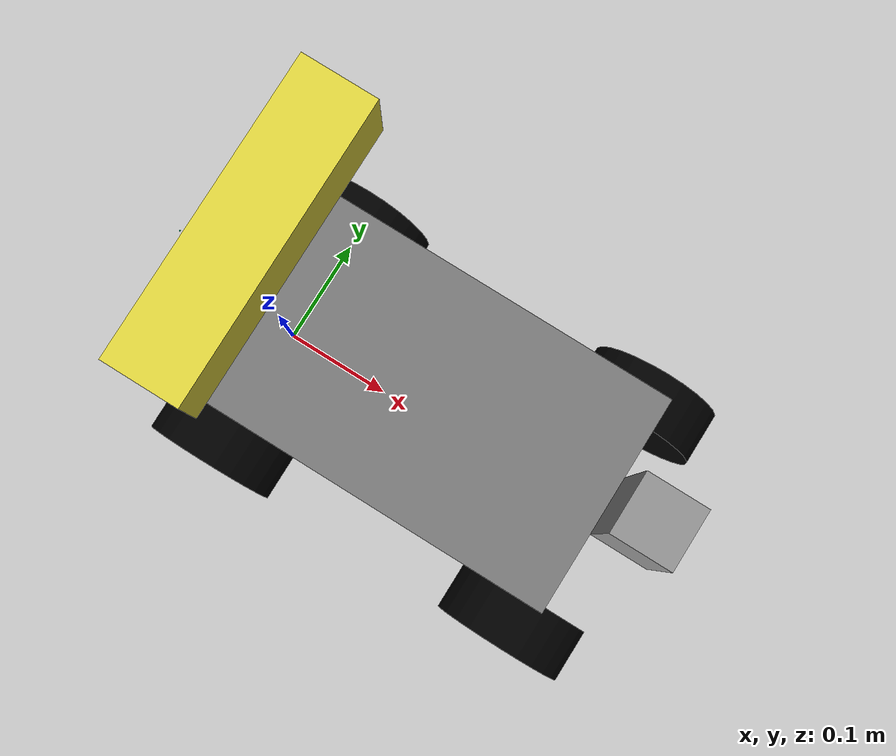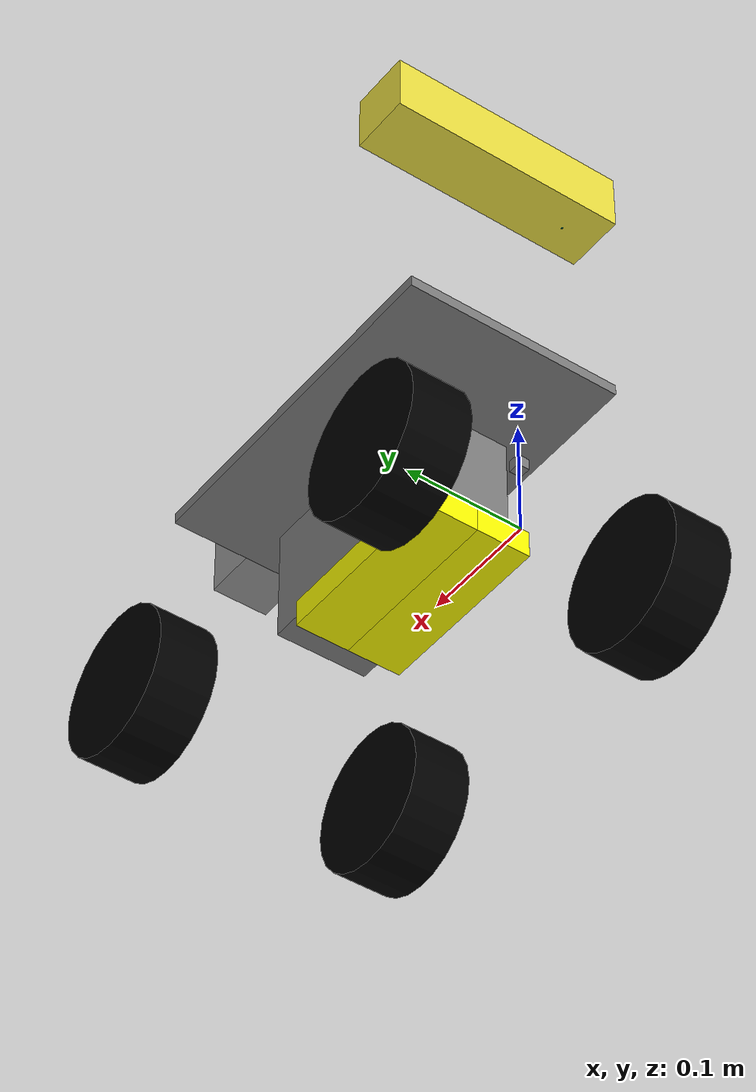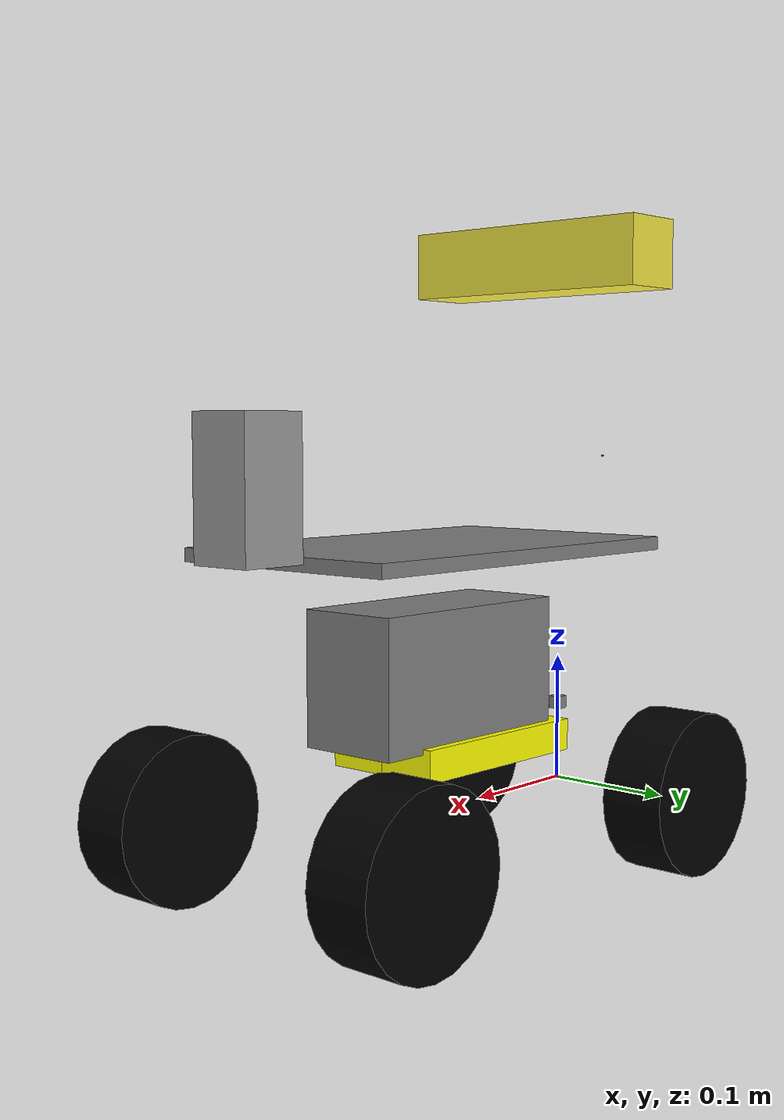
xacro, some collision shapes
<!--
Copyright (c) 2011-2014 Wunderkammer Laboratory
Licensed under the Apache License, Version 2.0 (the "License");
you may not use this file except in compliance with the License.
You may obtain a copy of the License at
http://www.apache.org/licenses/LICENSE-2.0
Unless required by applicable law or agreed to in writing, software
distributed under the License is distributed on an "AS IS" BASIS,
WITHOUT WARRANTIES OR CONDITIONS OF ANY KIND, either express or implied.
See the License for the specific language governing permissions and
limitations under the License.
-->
<?xml version="1.0"?>

<!-- Modified by: Christoph Gollok 2015
     Email: christoph.gollok@alumni.fh-aachen.de -->

<robot name="em_3905" xmlns:xacro="http://www.ros.org/wiki/xacro">
  <!-- Degree-to-radian conversions -->
  <xacro:property name="degrees_45" value="0.785398163"/>
  <xacro:property name="degrees_90" value="1.57079633"/>
<xacro:property name="PI" value="3.1415"/>

  <!-- chassis_length is measured along the x axis, chassis_width
       along the y axis, and chassis_height along the z axis. -->
  <xacro:property name="chassis_length" value="0.31"/>
  <xacro:property name="chassis_width" value="0.19"/>
  <xacro:property name="chassis_height" value="0.01"/>
  <xacro:property name="chassis_mass" value="2.0"/>
  <xacro:property name="chassis_visual_length" value="0.18"/>
  <xacro:property name="chassis_visual_height" value="0.10"/>
  <xacro:property name="chassis_visual_width" value="0.08"/>

  <xacro:property name="battery_x_offset" value="0.055"/>
  <xacro:property name="battery_dist" value="0.00"/>
  <xacro:property name="battery_comp_depth" value="0.02"/>
  <xacro:property name="battery_comp_angle" value="0"/>
  <xacro:property name="battery_length" value="0.16"/>
  <xacro:property name="battery_width" value="0.047"/>
  <xacro:property name="battery_height" value="0.024"/>
  <xacro:property name="battery_mass" value="0.5025"/>

  <xacro:property name="hub_dia" value="0.09652"/>
  <xacro:property name="tire_dia" value="0.125"/>
  <xacro:property name="tire_width" value="0.05"/>
  <xacro:property name="hex_hub_depth" value="0.005"/>
  <xacro:property name="wheel_mass" value="0.29"/>

  <xacro:property name="wheelbase" value="0.31"/>
  <xacro:property name="hex_hub_dist" value="0.27"/>
  <xacro:property name="axle_length" value="0.02"/>
  <xacro:property name="wheel_travel" value="0.03"/>
  <xacro:property name="shock_z_offset" value="0.0655"/>

  <xacro:property name="shock_eff_limit" value="5.0"/>
  <xacro:property name="shock_vel_limit" value="250"/>

  <xacro:property name="axle_eff_limit" value="5.12766"/>
  <xacro:property name="axle_vel_limit" value="244.8696"/>

  <!-- These constants are used to simulate a Traxxas 2056 servo operated at
       6 V. servo_stall_torque is measured in N m. servo_no_load_speed is
       measured in rad/s. -->
  <xacro:property name="servo_stall_torque" value="0.5649"/>
  <xacro:property name="servo_no_load_speed" value="4.553"/>

	<!-- constants for our SICK Laserscanners -->

 <xacro:property name="SICK_laser_x_size" value="0.05"/>
  <xacro:property name="SICK_laser_y_size" value="0.05"/>
  <xacro:property name="SICK_laser_z_size" value="0.1"/>
  <xacro:property name="SICK_laser_mass" value="0.2"/>

	<!-- constants for our XTION RGBD Cams -->

<xacro:property name="kinect_x_size" value="0.053" />
  <xacro:property name="kinect_y_size" value="0.21" />
  <xacro:property name="kinect_z_size" value="0.052" />
  <xacro:property name="kinect_pitch" value="0.0" />
  <xacro:property name="kinect_mtplate_z_offset" value="0.245" />

  <xacro:property name="kinect_mass" value="0.1" />

<!-- Steel mountPlate -->

 <xacro:property name="mountplate_length" value="0.24"/>
  <xacro:property name="mountplate_width" value="0.125"/>
  <xacro:property name="mountplate_height" value="0.01"/>
  <xacro:property name="mountplate_mass" value="0.4"/>
<xacro:property name="chassis_to_mountplate_z_offset" value=".14"/>

  <material name="battery_mat">
    <color rgba="1 1 0 1"/>
  </material>
  <material name="chassis_mat">
    <color rgba="0.5 0.5 0.5 1"/>
  </material>
  <material name="tire_mat">
    <color rgba="0 0 0 1"/>
  </material>

  <!-- Null inertial element. This is needed to make the model work with
       Gazebo. -->
  <xacro:macro name="null_inertial">
    <inertial>
      <mass value="0.001"/>
      <inertia ixx="0.001" ixy="0" ixz="0" iyy="0.001" iyz="0" izz="0.001"/>
    </inertial>
  </xacro:macro>

  <!-- Inertia of a solid cuboid. Width is measured along the x axis, depth
       along the y axis, and height along the z axis. -->
  <xacro:macro name="solid_cuboid_inertial"
               params="width depth height mass *origin">
    <inertial>
      <xacro:insert_block name="origin"/>
      <mass value="${mass}"/>
      <inertia ixx="${mass * (depth * depth + height * height) / 12}"
               ixy="0" ixz="0"
               iyy="${mass * (width * width + height * height) / 12}"
               iyz="0"
               izz="${mass * (width * width + depth * depth) / 12}"/>
    </inertial>
  </xacro:macro>

  <xacro:macro name="thick_walled_tube_inertial"
               params="inner_rad outer_rad height mass">
    <inertial>
      <mass value="${mass}"/>
      <inertia ixx="${(1 / 12) * mass * (3 * (inner_rad * inner_rad +
                    outer_rad * outer_rad) + height * height)}"
               ixy="0" ixz="0"
               iyy="${(1 / 12) * mass * (3 * (inner_rad * inner_rad +
                    outer_rad * outer_rad) + height * height)}"
               iyz="0"
               izz="${mass * (inner_rad * inner_rad +
                    outer_rad * outer_rad) / 2}"/>
    </inertial>
  </xacro:macro>

  <!-- Battery -->

  <xacro:macro name="battery" params="prefix reflect">
    <joint name="chassis_to_${prefix}_battery" type="fixed">
      <parent link="chassis"/>
      <child link="${prefix}_battery_offset"/>
      <origin xyz="${battery_x_offset - battery_length / 2}
                   ${reflect * battery_dist / 2}
                   0"
              rpy="${reflect * battery_comp_angle} 0 0"/>
    </joint>

    <link name="${prefix}_battery_offset">
      <xacro:null_inertial/>
    </link>

    <joint name="offset_to_${prefix}_battery" type="fixed">
      <parent link="${prefix}_battery_offset"/>
      <child link="${prefix}_battery"/>
      <origin xyz="0
                   ${reflect * battery_width / 2}
                   ${(battery_height / 2) - battery_comp_depth}"/>
    </joint>

    <link name="${prefix}_battery">
      <visual>
        <geometry>
          <box size="${battery_length} ${battery_width} ${battery_height}"/>
        </geometry>
        <material name="battery_mat"/>
      </visual>

      <collision>
        <geometry>
          <box size="${battery_length} ${battery_width} ${battery_height}"/>
        </geometry>
      </collision>

      <xacro:solid_cuboid_inertial
         width="${battery_length}" depth="${battery_width}"
         height="${battery_height}" mass="${battery_mass}">
        <origin/>
      </xacro:solid_cuboid_inertial>
    </link>

    <gazebo reference="${prefix}_battery">
      <material>Gazebo/Blue</material>
    </gazebo>
  </xacro:macro>

  <!-- Shock absorber -->
  <xacro:macro name="shock"
               params="lr_prefix fr_prefix lr_reflect fr_reflect child">
    <joint name="${lr_prefix}_${fr_prefix}_shock" type="prismatic">
      <parent link="chassis"/>
      <child link="${child}"/>

      <origin xyz="${fr_reflect * wheelbase / 2}
                   ${lr_reflect * ((hex_hub_dist / 2) - axle_length)}
                   ${(wheel_travel / 2) - shock_z_offset}"/>
      <axis xyz="0 0 -1"/>
      <limit lower="${-wheel_travel / 2}" upper="${wheel_travel / 2}"
             effort="${shock_eff_limit}" velocity="${shock_vel_limit}"/>
    </joint>
    <transmission name="${lr_prefix}_${fr_prefix}_shock_trans">
      <type>transmission_interface/SimpleTransmission</type>
      <joint name="${lr_prefix}_${fr_prefix}_shock">
        <hardwareInterface>hardware_interface/EffortJointInterface</hardwareInterface>
      </joint>
      <actuator name="${lr_prefix}_${fr_prefix}_shock_act">
        <!-- This hardwareInterface element exists for compatibility
             with ROS Hydro. -->
        <hardwareInterface>hardware_interface/EffortJointInterface</hardwareInterface>
        <mechanicalReduction>1</mechanicalReduction>
      </actuator>
    </transmission>
  </xacro:macro>

  <!-- The "wheel" macro defines an axle carrier, axle, and wheel. -->
  <xacro:macro name="wheel" params="lr_prefix fr_prefix lr_reflect">
    <link name="${lr_prefix}_${fr_prefix}_axle_carrier">
      <xacro:null_inertial/>
    </link>

    <!-- The left and right axles have the same axis so that identical
         rotation values cause the wheels to rotate in the same direction. -->
    <joint name="${lr_prefix}_${fr_prefix}_axle" type="continuous">
      <parent link="${lr_prefix}_${fr_prefix}_axle_carrier"/>
      <child link="${lr_prefix}_${fr_prefix}_wheel"/>
      <origin rpy="${degrees_90} 0 0"/>
      <axis xyz="0 0 -1"/>
      <limit effort="${axle_eff_limit}" velocity="${axle_vel_limit}"/>
    </joint>
    <transmission name="${lr_prefix}_${fr_prefix}_axle_trans">
      <type>transmission_interface/SimpleTransmission</type>
      <joint name="${lr_prefix}_${fr_prefix}_axle">
        <hardwareInterface>hardware_interface/EffortJointInterface</hardwareInterface>
      </joint>
      <actuator name="${lr_prefix}_${fr_prefix}_axle_act">
        <!-- This hardwareInterface element exists for compatibility
             with ROS Hydro. -->
        <hardwareInterface>hardware_interface/EffortJointInterface</hardwareInterface>
        <mechanicalReduction>1</mechanicalReduction>
      </actuator>
    </transmission>

<link name="${lr_prefix}_${fr_prefix}_wheel">
      <visual>
        <origin xyz="0
                     ${lr_reflect * (axle_length - (tire_width /
                     2 - hex_hub_depth))}
                     0"/>
        <geometry>
          <cylinder radius="${tire_dia / 2}" length="${tire_width}"/>
        </geometry>
        <material name="tire_mat"/>
      </visual>
      <collision>
        <origin xyz="0
                     ${lr_reflect * (axle_length - (tire_width /
                     2 - hex_hub_depth))}
                     0"/>
        <geometry>
          <cylinder radius="${tire_dia / 2}" length="${tire_width}"/>
        </geometry>
      </collision>

      <xacro:thick_walled_tube_inertial
          inner_rad="${hub_dia / 2}" outer_rad="${tire_dia / 2}"
          height="${tire_width}" mass="${wheel_mass}"/>
    </link>

    <gazebo reference="${lr_prefix}_${fr_prefix}_wheel">
      <material>Gazebo/Black</material>
    </gazebo>
  </xacro:macro>

  <!-- Front wheel -->
  <xacro:macro name="front_wheel"
               params="lr_prefix fr_prefix lr_reflect fr_reflect">
    <xacro:shock lr_prefix="${lr_prefix}" fr_prefix="${fr_prefix}"
                 lr_reflect="${lr_reflect}" fr_reflect="${fr_reflect}"
                 child="${lr_prefix}_steering_link"/>

    <link name="${lr_prefix}_steering_link">
      <xacro:null_inertial/>
    </link>

    <joint name="${lr_prefix}_steering_joint" type="revolute">
      <parent link="${lr_prefix}_steering_link"/>
      <child link="${lr_prefix}_${fr_prefix}_axle_carrier"/>
      <axis xyz="0 0 1"/>
      <limit lower="${-degrees_45}" upper="${degrees_45}"
             effort="${servo_stall_torque}" velocity="${servo_no_load_speed}"/>
    </joint>
    <transmission name="${lr_prefix}_steering_trans">
      <type>transmission_interface/SimpleTransmission</type>
      <joint name="${lr_prefix}_steering_joint">
        <hardwareInterface>hardware_interface/EffortJointInterface</hardwareInterface>
      </joint>
      <actuator name="${lr_prefix}_steering_act">
        <!-- This hardwareInterface element exists for compatibility
             with ROS Hydro. -->
        <hardwareInterface>hardware_interface/EffortJointInterface</hardwareInterface>
        <mechanicalReduction>1</mechanicalReduction>
      </actuator>
    </transmission>

    <xacro:wheel lr_prefix="${lr_prefix}" fr_prefix="${fr_prefix}"
                 lr_reflect="${lr_reflect}"/>
  </xacro:macro>

  <!-- Rear wheel -->
  <xacro:macro name="rear_wheel"
               params="lr_prefix fr_prefix lr_reflect fr_reflect">
    <xacro:shock lr_prefix="${lr_prefix}" fr_prefix="${fr_prefix}"
                 lr_reflect="${lr_reflect}" fr_reflect="${fr_reflect}"
                 child="${lr_prefix}_${fr_prefix}_axle_carrier"/>
    <xacro:wheel lr_prefix="${lr_prefix}" fr_prefix="${fr_prefix}"
                 lr_reflect="${lr_reflect}"/>
  </xacro:macro>

  <link name="base_footprint">
  </link>
    <gazebo reference="base_footprint">
      <material>Gazebo/Grey</material>
    </gazebo>

    <!-- base_link must have geometry so that its axes can be displayed in
         rviz. -->
  <link name="base_link">
    <visual>
      <geometry>
        <box size="0.01 0.01 0.01"/>
      </geometry>
      <material name="chassis_mat"/>
    </visual>
    <xacro:null_inertial/>
  </link>
  <gazebo reference="base_link">
    <material>Gazebo/White</material>
  </gazebo>

  <joint name="base_footprint_to_base_link" type="fixed">
    <origin xyz="0 0 ${tire_dia/2}"/>
    <parent link="base_footprint"/>
    <child link="base_link"/>
  </joint>

  <!-- Chassis -->
  <link name="chassis">
    <visual>
      <origin xyz="0 0 ${chassis_visual_height /2}"/>
      <geometry>
        <box size="${chassis_visual_length} ${chassis_visual_width} ${chassis_visual_height}"/>
      </geometry>
      <material name="chassis_mat"/>
    </visual>

    <collision>
      <origin xyz="0 0 ${chassis_visual_height /2}"/>
      <geometry>
        <box size="${chassis_visual_length} ${chassis_visual_width} ${chassis_visual_height}"/>
      </geometry>
    </collision>

    <xacro:solid_cuboid_inertial
        width="${chassis_length}" depth="${chassis_width}"
        height="${chassis_height}" mass="${chassis_mass}">
        <origin xyz="0 0 ${chassis_to_mountplate_z_offset}"/>
    </xacro:solid_cuboid_inertial>
  </link>
  <gazebo reference="chassis">
    <material>Gazebo/Black</material>
  </gazebo>

  <joint name="base_link_to_chassis" type="fixed">
      <origin xyz="${wheelbase/2} 0 ${-chassis_height / 2}"/>
    <parent link="base_link"/>
    <child link="chassis"/>
  </joint>
<!-- mountPlate -->

  <link name="mountplate">
    <visual>
      <geometry>
        <box size="${chassis_length} ${chassis_width} ${chassis_height}"/>
      </geometry>
      <material name="chassis_mat"/>
    </visual>

    <collision>

      <geometry>
        <box size="${chassis_length} ${chassis_width} ${chassis_height}"/>
      </geometry>
    </collision>

    <xacro:solid_cuboid_inertial
        width="${chassis_length}" depth="${chassis_width}"
        height="${chassis_height}" mass="${chassis_mass}">
      <origin xyz="0 0 ${-chassis_height / 2}"/>
    </xacro:solid_cuboid_inertial>
  </link>
  <gazebo reference="mountplate">
    <material>Gazebo/Grey</material>
  </gazebo>

<joint name="chassis_to_mountplate" type="fixed">
<origin xyz="0 0 ${chassis_to_mountplate_z_offset}"/>
    <parent link="chassis"/>
    <child link="mountplate"/>
  </joint>

  <!-- Batteries -->
  <xacro:battery prefix="left" reflect="1"/>
  <xacro:battery prefix="right" reflect="-1"/>

  <!-- Wheels -->
  <xacro:front_wheel lr_prefix="left" fr_prefix="front"
                     lr_reflect="1" fr_reflect="1"/>
  <xacro:front_wheel lr_prefix="right" fr_prefix="front"
                     lr_reflect="-1" fr_reflect="1"/>
  <xacro:rear_wheel lr_prefix="left" fr_prefix="rear"
                    lr_reflect="1" fr_reflect="-1"/>
  <xacro:rear_wheel lr_prefix="right" fr_prefix="rear"
                    lr_reflect="-1" fr_reflect="-1"/>

	<!-- sensors -->
 <xacro:include filename="$(find rover_description)/urdf/sensors/imu.urdf.xacro"/>
 <xacro:include filename="$(find rover_description)/urdf/sensors/openni_camera.urdf.xacro"/>
 <xacro:include filename="$(find rover_description)/urdf/sensors/SICK_laser.urdf.xacro"/>

  <gazebo>
    <plugin name="gazebo_ros_control" filename="libgazebo_ros_control.so"/>
  </gazebo>
</robot>

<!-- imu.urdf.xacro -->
<!--
Author: David Masternak
email: david.masternak@alumni.fh-aachen.de

Update: Christoph Gollok
	christoph.gollok@alumni.fh-aachen.de

IMU for the rover

ToDO: Maybe change name of the topicname
-->

<robot>
  <!-- IMU LINK -->
  <link name="imu_link">
    <inertial>
      <mass value="0.001"/>
      <origin rpy="0 0 0" xyz="0 0 0"/>
      <inertia ixx="0.0001" ixy="0" ixz="0" iyy="0.000001" iyz="0" izz="0.0001"/>
    </inertial>
    <visual>
      <origin rpy="0 0 0" xyz="0 0 0"/>
      <geometry>
        <box size="0.001 0.001 0.001"/>
      </geometry>
    </visual>
    <collision>
      <origin rpy="0 0 0" xyz="0 0 0"/>
      <geometry>
        <box size=".001 .001 .001"/>
      </geometry>
    </collision>
  </link>

  <!-- IMU JOINT -->
  <joint name="imu_joint" type="fixed">
    <origin xyz="-0.06 0 0.2" rpy="0 0 0" />
    <parent link="base_link"/>
    <child link="imu_link" />
  </joint>

  <!-- ROS IMU PLUGIN -->
  <gazebo>
    <plugin name="imu_controller" filename="libhector_gazebo_ros_imu.so">
      <alwaysOn>true</alwaysOn>
      <updateRate>50.0</updateRate>
      <bodyName>base_link</bodyName>
      <topicName>imu_data</topicName>
      <gaussianNoise>2.89e-08</gaussianNoise>
      <xyzOffsets>0 0 0</xyzOffsets>
      <rpyOffsets>0 0 0</rpyOffsets>
      <position name="imu_position"/>
    </plugin>
  </gazebo>
</robot>

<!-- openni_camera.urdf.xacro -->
<!--
Author: Marcel Stuettgen
email: stuettgen@fh-aachen.de

kinect rgbd camera

-->

<robot>

   <joint name="kinect_base_joint" type="fixed">
    <origin xyz="${-chassis_length/2 + kinect_x_size } 0 ${kinect_mtplate_z_offset - kinect_z_size/2}" rpy="0 ${kinect_pitch} 0" /> <!-- position here -->
    <parent link="mountplate" />
    <child link="camera_link" />
  </joint>

<link name="camera_link">
    <inertial>
      <mass value="0.01" />
      <origin xyz="0 0 0" />
      <inertia ixx="0.001" ixy="0.0" ixz="0.0"
        iyy="0.001" iyz="0.0"
        izz="0.001" />
    </inertial>
    <visual>
      <origin xyz=" 0 0 0 " rpy="0 0 0" />
      <geometry>
	<mesh filename="file://$(find rover_description)/meshes/sensors/kinect.dae" scale="0.8 0.8 0.8"/>
      </geometry>
    </visual>
    <collision>
      <origin xyz="${-1*(kinect_x_size/2)} 0.0 0.0" rpy="0 0 0" />
      <geometry>
        <box size="${kinect_x_size} ${kinect_y_size} ${kinect_z_size}"/>
      </geometry>
    </collision>
  </link>

  <joint name="kinect_depth_joint" type="fixed">
    <origin xyz="0 0.018 0" rpy="0 0 0" />
    <parent link="camera_link" />
    <child link="kinect_depth_frame" />
  </joint>

  <link name="kinect_depth_frame">
    <inertial>
      <mass value="0.01" />
      <origin xyz="0 0 0" />
      <inertia ixx="0.001" ixy="0.0" ixz="0.0"
        iyy="0.001" iyz="0.0"
        izz="0.001" />
    </inertial>
  </link>

  <joint name="kinect_depth_optical_joint" type="fixed">
    <origin xyz="0 0 0" rpy="${-PI/2} 0 ${-PI/2}" />
    <parent link="kinect_depth_frame" />
    <child link="kinect_depth_optical_frame" />
  </joint>

  <link name="kinect_depth_optical_frame">
    <inertial>
      <mass value="0.001" />
      <origin xyz="0 0 0" />
      <inertia ixx="0.0001" ixy="0.0" ixz="0.0"
        iyy="0.0001" iyz="0.0"
        izz="0.0001" />
    </inertial>
  </link>

  <joint name="kinect_rgb_joint" type="fixed">
    <origin xyz="0 -0.005 0" rpy="0 0 0" />
    <parent link="camera_link" />
    <child link="kinect_rgb_frame" />
  </joint>

  <link name="kinect_rgb_frame">
    <inertial>
      <mass value="0.001" />
      <origin xyz="0 0 0" />
      <inertia ixx="0.0001" ixy="0.0" ixz="0.0"
        iyy="0.0001" iyz="0.0"
        izz="0.0001" />
    </inertial>
  </link>

  <joint name="kinect_rgb_optical_joint" type="fixed">
    <origin xyz="0 0 0" rpy="${-PI/2} 0 ${-PI/2}" />
    <parent link="kinect_rgb_frame" />
    <child link="kinect_rgb_optical_frame" />
  </joint>

  <link name="kinect_rgb_optical_frame">
    <inertial>
      <mass value="0.001" />
      <origin xyz="0 0 0" />
      <inertia ixx="0.0001" ixy="0.0" ixz="0.0"
        iyy="0.0001" iyz="0.0"
        izz="0.0001" />
    </inertial>
  </link>

	<!-- SENSOR -->
	<gazebo reference="camera_link">
		<sensor type="depth" name="kinect_rgb_camera">
			<always_on>1</always_on>
			<update_rate>20</update_rate>
        		<visualize>true</visualize>
			<camera>
				<horizontal_fov>1.047</horizontal_fov>
				<image>
					<width>640</width>
					<height>480</height>
					<format>R8G8B8</format>
				</image>
				<clip>
					<near>0.1</near>
					<far>100</far>
				</clip>
			</camera>
			<plugin name="camera_controller" filename="libgazebo_ros_openni_kinect.so">
				<alwaysOn>true</alwaysOn>
        			<updateRate>10.0</updateRate>
	       			<cameraName>camera</cameraName>
        			<frameName>kinect_rgb_optical_frame</frameName>
				<imageTopicName>image_raw</imageTopicName>
				<depthImageTopicName>depth/image_raw</depthImageTopicName>
				<pointCloudTopicName>depth/points</pointCloudTopicName>
				<cameraInfoTopicName>camera_info</cameraInfoTopicName>
				<depthImageCameraInfoTopicName>depth/camera_info</depthImageCameraInfoTopicName>
				<pointCloudCutoff>0.4</pointCloudCutoff>
        			<hackBaseline>0.07</hackBaseline>
        			<distortionK1>0.0</distortionK1>
        			<distortionK2>0.0</distortionK2>
        			<distortionK3>0.0</distortionK3>
        			<distortionT1>0.0</distortionT1>
        			<distortionT2>0.0</distortionT2>
				<CxPrime>0.0</CxPrime>
				<Cx>0.0</Cx>
				<Cy>0.0</Cy>
				<focalLength>0.0</focalLength>
      			</plugin>
		</sensor>
	</gazebo>

</robot>

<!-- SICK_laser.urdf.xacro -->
<!--
Author: Marcel Stuettgen
email: stuettgen@fh-aachen.de

SICK_laser laser scan for the husky

-->

<robot>
	<!-- SICK_laser LINK -->
	<link name="laser_link">
		<inertial>
        		<mass value="0.01" />
			<origin xyz="0 0 0" />
			<inertia ixx="0.01" ixy="0.0" ixz="0.0"
                        	 iyy="0.01" iyz="0.0"
				 izz="0.01" />
		</inertial>

        	<visual>
			<origin xyz="0 0 ${-SICK_laser_z_size/2}" rpy="0 0 0" />
			<geometry>
				<mesh filename="package://rover_description/meshes/sensors/hokuyo.dae"/>
				<!--box size = "0.1 0.1 0.1"/-->
            		</geometry>
        	</visual>

		<collision>
			<geometry>
				<box size="${SICK_laser_x_size} ${SICK_laser_y_size} ${SICK_laser_z_size}" />
				<!--box size = "0.1 0.1 0.1"/-->
			</geometry>
		</collision>
        </link>

	<!-- SICK_laser JOINT -->
	<joint name="SICK_laser_joint" type="fixed">
		<!-- origin xyz="0.23 0 0.29" rpy="0 0 0" /-->
		<origin xyz="${chassis_length/2 + SICK_laser_x_size/2} 0 ${SICK_laser_z_size/2}" rpy="0 0 0" />
        	<parent link="mountplate"/>
        	<child link="laser_link" />
	</joint>

	<!-- SENSOR -->
	<gazebo reference="laser_link">
		<material>Gazebo/Grey</material>
		<sensor name="SICK_laser" type="ray">
			<update_rate>200</update_rate>
			<always_on>1</always_on>
        		<visualize>false</visualize>
        		<ray>
				<scan>
					<horizontal>
              					<samples>820</samples>
              					<resolution>0.5</resolution>
              					<min_angle>${-3.0/4.0 * PI}</min_angle>
              					<max_angle>${ 3.0/4.0 * PI}</max_angle>
            				</horizontal>
          			</scan>
          			<range>
            				<min>0.05</min>
            				<max>25</max>
            				<resolution>0.01</resolution>
         			</range>
       			</ray>
			<plugin name='SICK_laser_plugin' filename='libgazebo_ros_laser.so'>
				<updateRate>200.0</updateRate>
				<frameName>laser_link</frameName>
				<topicName>scan</topicName>
				<gaussianNoise>0.0</gaussianNoise>
				<SICK_laserMinIntensity>101</SICK_laserMinIntensity>
			</plugin>
      		</sensor>
	</gazebo>

</robot>
